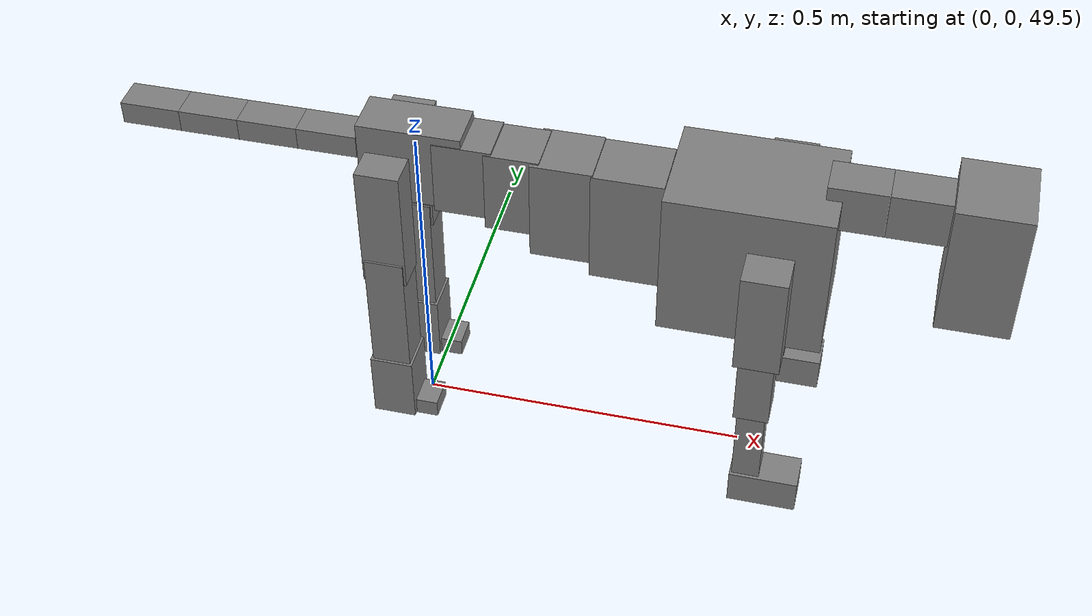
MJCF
<mujoco model="dog">

    <default>
        <joint armature="0.02" stiffness="1" damping="0.2" limited="true"/>
        <geom condim="3" friction="1 0.05 0.05" margin="0.01"/>
        <motor ctrllimited="true" ctrlrange="-1.0 1.0" forcelimited="true" gear="50"/>
    </default>

    <compiler inertiafromgeom="true" angle="radian"/>

    <option timestep="0.016" iterations="50" tolerance="1e-10" solver="Newton" jacobian="dense" cone="pyramidal"/>

    <size nconmax="20000" njmax="60000" nstack="5000000"/>
    <visual>
        <map force="0.1" zfar="30"/>
        <rgba haze="0.15 0.25 0.35 1"/>
        <quality shadowsize="2048"/>
        <global offwidth="800" offheight="800"/>
    </visual>

    <asset>
        <texture type="skybox" builtin="gradient" rgb1="0.3 0.5 0.7" rgb2="0 0 0" width="512" height="512"/>
        <texture name="texplane" type="2d" builtin="checker" rgb1=".2 .3 .4" rgb2=".1 0.15 0.2" width="512" height="512"
                 mark="cross" markrgb=".8 .8 .8"/>
        <texture name="texgeom" type="cube" builtin="flat" mark="cross" width="127" height="1278" rgb1="0.8 0.6 0.4"
                 rgb2="0.8 0.6 0.4" markrgb="1 1 1" random="0.01"/>

        <material name="matplane" reflectance="0.3" texture="texplane" texrepeat="1 1" texuniform="true"/>
        <material name="matgeom" texture="texgeom" texuniform="true" rgba="0.8 0.6 .4 1"/>
    </asset>

    <worldbody>
        <geom name="floor" pos="0 0 0" size="0 0 .25" type="plane" material="matplane" condim="3"/>

        <light directional="false" diffuse=".2 .2 .2" specular="0 0 0" pos="0 0 5" dir="0 0 -1" castshadow="false"/>
        <light mode="targetbodycom" target="torso" directional="false" diffuse=".8 .8 .8" specular="0.3 0.3 0.3"
               pos="0 0 4.0" dir="0 0 -1"/>

        <body name="root" pos="0 0 50">
            <freejoint name="root_1"/>
            <geom type="box" pos="0 0 -0.02" size="0.0774  0.0358  0.063" density="2030"/>

            <body name="spine1" pos="0.054 0 0">
                <joint name="spine1_y" axis="0 1 0" range="0 0.7" limited="true"/>
                <geom type="box" pos="0.02375 0 -0.03" size="0.04375  0.0375  0.05985" density="2030"/>

                <body name="spine2" pos="0.0612 0 0">
                    <joint name="spine2_y" axis="0 1 0" range="-0.15 0.15" limited="true"/>
                    <geom type="box" pos="0.03555  0  -0.04" size="0.04055  0.039  0.06615" density="2030"/>

                    <body name="spine3" pos="0.0730 0 0">
                        <joint name="spine3_y" axis="0 1 0" range="-0.15 0.15" limited="true"/>
                        <geom type="box" pos="0.03555  0  -0.057" size="0.04555  0.0445  0.081" density="2030"/>

                        <body name="spine4" pos="0.0780 0 0">
                            <joint name="spine4_y" axis="0 1 0" range="-0.15 0.15" limited="true"/>
                            <geom type="box" pos="0.05265  0  -0.07" size="0.05265  0.045  0.09135" density="2030"/>

                            <body name="torso" pos="0.1082 0 0">
                                <joint name="torso_y" axis="0 1 0" range="-0.15 0.15" limited="true"/>
                                <geom type="box" pos="0.11925  0  -0.085" size="0.11925  0.085  0.11745"
                                      density="2030"/>

                                <body name="neck1" pos="0.2160  0   0.0180">
                                    <joint name="neck1_y" axis="0 1 0" range="-1.2  -1" limited="true"/>
                                    <geom type="box" pos="0.0423  0  0" size="0.0423  0.03  0.036" density="2325"/>

                                    <body name="neck2" pos="0.0853  0  0">
                                        <joint name="neck2_y" axis="0 1 0" range="0.1  0" limited="true"/>
                                        <geom type="box" pos="0.0423  0  0" size="0.0423  0.03  0.036" density="2325"/>

                                        <body name="head" pos="0.0853  0  0">
                                            <joint name="head_y" axis="0 1 0" range="-0.3  -0.2" limited="true"/>
                                            <geom type="box" pos="0.0531  0  -0.055" size="0.0531  0.06  0.1044"
                                                  density="4030"/>

                                        </body>
                                    </body>
                                </body>

                                <body name="front_shoulder" pos="0.156  0   -0.0480">
                                    <joint name="front_shoulder_y" axis="0 1 0" range="-1 1.5" limited="true"/>
                                    <geom type="box" pos="0 0.13 -0.0553" size="0.0329  0.0281  0.0820" density="1158"/>
                                    <geom type="box" pos="0 -0.13 -0.0553" size="0.0329  0.0281  0.0820"
                                          density="1158"/>

                                    <body name="front_elbow" pos="0  0  -0.1106">
                                        <joint name="front_elbow_y" axis="0 1 0" range="-2 0" limited="true"/>
                                        <geom type="box" pos="0 0.13 -0.0650" size="0.0256  0.0262  0.0650"
                                              density="1081"/>
                                        <geom type="box" pos="0 -0.13 -0.0650" size="0.0256  0.0262  0.0650"
                                              density="1081"/>

                                        <body name="front_wrist" pos="0  0  -0.1300">
                                            <joint name="front_wrist_y" axis="0 1 0" range="-0.2 0" limited="true"/>
                                            <geom type="box" pos="0 0.13 -0.0684" size="0.0204  0.0227  0.0816"
                                                  density="1664"/>
                                            <geom type="box" pos="0 -0.13 -0.0684" size="0.0204  0.0227  0.0816"
                                                  density="1664"/>

                                            <body name="front_finger_end" pos="0  0  -0.1369">
                                                <joint name="front_finger_y" axis="0 1 0" range="-0.4 1"
                                                       limited="true"/>
                                                <geom type="box" pos="0.0277  0.13  -0.0119"
                                                      size="0.0508  0.0277  0.0269" density="1515"/>
                                                <geom type="box" pos="0.0277  -0.13  -0.0119"
                                                      size="0.0508  0.0277  0.0269" density="1515"/>

                                            </body>

                                        </body>
                                    </body>
                                </body>

                            </body>
                        </body>
                    </body>
                </body>
            </body>

            <body name="back_hip" pos="-0.03 0 -0.018">
                <joint name="back_hip_y" axis="0 1 0" range="-1.5 0.3" limited="true"/>
                <geom type="box" pos="0 0.07 -0.0770" size="0.0327  0.0256  0.0998" density="1154"/>
                <geom type="box" pos="0 -0.07 -0.0770" size="0.0327  0.0256  0.0998" density="1154"/>

                <body name="back_knee" pos="0  0  -0.1541">
                    <joint name="back_knee_y" axis="0 1 0" range="0 2.8" limited="true"/>
                    <geom type="box" pos="0 0.07 -0.0978" size="0.0293  0.0288  0.1133" density="1227"/>
                    <geom type="box" pos="0 -0.07 -0.0978" size="0.0293  0.0288  0.1133" density="1227"/>

                    <body name="back_ankle" pos="0  0  -0.1956">
                        <joint name="back_ankle_y" axis="0 1 0" range="-2.2 0" limited="true"/>
                        <geom type="box" pos="0 0.07 -0.0434" size="0.0329  0.0329  0.0547" density="1284"/>
                        <geom type="box" pos="0 -0.07 -0.0434" size="0.0329  0.0329  0.0547" density="1284"/>

                        <body name="back_toe_end" pos="0  0  -0.0869">
                            <joint name="back_toe_y" axis="0 1 0" range="-0.4 1" limited="true"/>
                            <geom type="box" pos="0.0236  0.07  0.0010" size="0.0432  0.0236  0.0140" density="1515"/>
                            <geom type="box" pos="0.0236  -0.07  0.0010" size="0.0432  0.0236  0.0140" density="1515"/>

                        </body>
                    </body>
                </body>
            </body>

            <body name="tail1" pos="-0.074 0 -0.006">
                <joint name="tail1_y" axis="0 1 0" range="-0.2 0.2" limited="true"/>
                <geom type="box" pos="-0.0536  0  0" size="0.045  0.025  0.0175" density="1587"/>

                <body name="tail2" pos="-0.09 0 0">
                    <joint name="tail2_y" axis="0 1 0" range="-0.2 0.2" limited="true"/>
                    <geom type="box" pos="-0.0536  0  0" size="0.045  0.025  0.0175" density="1587"/>

                    <body name="tail3" pos="-0.09 0 0">
                        <joint name="tail3_y" axis="0 1 0" range="-0.2 0.2" limited="true"/>
                        <geom type="box" pos="-0.0536  0  0" size="0.045  0.025  0.0175" density="1587"/>

                        <body name="tail4" pos="-0.09 0 0">
                            <joint name="tail4_y" axis="0 1 0" range="-0.2 0.2" limited="true"/>
                            <geom type="box" pos="-0.0536  0  0" size="0.045  0.025  0.0175" density="1587"/>

                        </body>
                    </body>
                </body>
            </body>
        </body>
    </worldbody>

    <actuator>
        <motor joint="spine1_y" forcerange="-150 150     "/>
        <motor joint="spine2_y" forcerange="-150 150     "/>
        <motor joint="spine3_y" forcerange="-150 150     "/>
        <motor joint="spine4_y" forcerange="-150 150     "/>
        <motor joint="torso_y" forcerange="-150 150     "/>
        <motor joint="neck1_y" forcerange="-100 100       "/>
        <motor joint="neck2_y" forcerange="-100 100       "/>
        <motor joint="head_y" forcerange="-150 150       "/>
        <motor joint="front_shoulder_y" forcerange="-158.32 129.31"/>
        <motor joint="front_elbow_y" forcerange="-102.64 187.71"/>
        <motor joint="front_wrist_y" forcerange="-131.64 50.13"/>
        <motor joint="front_finger_y" forcerange="-76.17 31.57"/>
        <motor joint="back_hip_y" forcerange="-289.13 252.60"/>
        <motor joint="back_knee_y" forcerange="-362.01 257.61"/>
        <motor joint="back_angle_y" forcerange="-213.47 213.38"/>
        <motor joint="back_toe_y" forcerange="-86.83 21.86"/>
        <motor joint="tail1_y" forcerange="-50 50     "/>
        <motor joint="tail2_y" forcerange="-50 50     "/>
        <motor joint="tail3_y" forcerange="-50 50     "/>
        <motor joint="tail4_y" forcerange="-50 50     "/>
    </actuator>
</mujoco>
